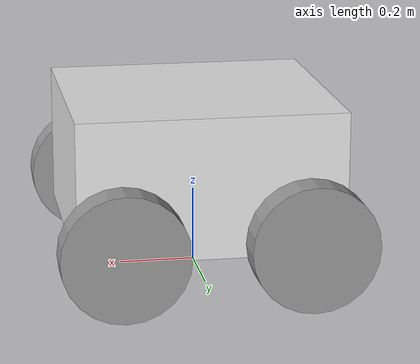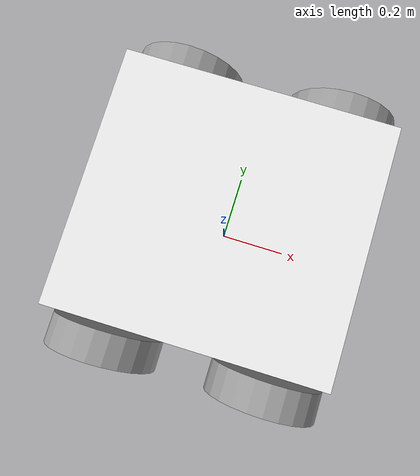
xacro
<?xml version="1.0"?>
<robot name="Nav2bot" xmlns:xacro="http://www.ros.org/wiki/xacro">

    <!-- INCLUDES - Bring all necessary components -->

    <!-- Include common properties of the differential robot. -->
    <xacro:include filename="$(find robot_description)/urdf/components/robot_structure/common_properties.xacro"/>

    <!-- Include the mobile base of the differential robot. -->
    <xacro:include filename="$(find robot_description)/urdf/components/robot_structure/mobile_base.xacro"/>

    <!-- sensor -->
    <xacro:include filename="$(find robot_description)/urdf/components/imu/mpu6050.urdf.xacro"/>

    <!-- Structure of the complete robot -->

     <!-- IMU (stable position, near the center of mass) -->
    <xacro:sensor_mpu6050 parent="base_link" name="imu">
        <origin xyz="0.0 0.0245 0.18" rpy="0.0 0.0 0.0"/>
    </xacro:sensor_mpu6050>

</robot>

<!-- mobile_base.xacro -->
<robot xmlns:xacro="http://www.ros.org/wiki/xacro">

    <!-- PARÁMETROS DIMENSIONALES DEL ROBOT -->

    <!-- Dimensiones del chasis principal [metros] -->
    <xacro:property name="base_length" value="0.7"/>      <!-- Largo del chasis (100cm) -->
    <xacro:property name="base_width" value="0.651"/>        <!-- Ancho del chasis (50cm) -->
    <xacro:property name="base_height" value="0.37"/>       <!-- Altura del chasis (30cm) -->

    <!-- Dimensiones de las ruedas [metros] -->
    <xacro:property name="wheel_radius" value="0.165"/>      <!-- Radio de cada rueda (10cm) -->
    <xacro:property name="wheel_length" value="0.09"/>     <!-- Grosor/ancho de rueda (5cm) -->

    <!-- Posicionamiento de ruedas [metros] -->
    <xacro:property name="wheel_y_offset" value="${base_width / 2.0 + wheel_length / 2 + 0.04}"/>  <!-- Distancia desde centro a rueda (4.85cm) -->
    <xacro:property name="wheel_x_offset" value="0.24"/> <!-- Desplazamiento longitudinal (20cm) -->
    <xacro:property name="wheel_z_offset" value="0.05"/>

    <!-- ESTRUCTURA PRINCIPAL DEL ROBOT -->

    <!-- Frame de referencia en el suelo -->
    <link name="base_footprint"/>

    <!-- Chasis principal del robot -->
    <link name="base_link">
        <visual>
            <geometry>
                <box size="${base_length} ${base_width} ${base_height}"/>
            </geometry>
            <!-- Posición: centro del chasis a la mitad de su altura -->
            <origin xyz="0 0 ${base_height / 2.0 }" rpy="0 0 0"/>
            <material name="white"/>
        </visual>
        <!-- Propiedades de inercia para simulación física -->
        <!-- m: masa [kg], l/w/h: dimensiones [m], xyz: centro de masa, rpy: orientación -->
        <xacro:box_inertia m="5.0" l="${2*base_length}" w="${2*base_width}" h="${2*base_height}"
         xyz="0 0 ${2*base_height / 2.0}" rpy="0 0 0" />
        <collision>
            <geometry>
                <box size="${base_length} ${base_width} ${base_height}"/>
            </geometry>
            <origin xyz="0 0 ${base_height / 2.0}" rpy="0 0 0"/>
        </collision>
    </link>

    <!-- MACRO PARA CREAR RUEDAS IDÉNTICAS -->

    <xacro:macro name="wheel_link" params="prefix">
        <link name="${prefix}_wheel_link">
            <visual>
                <geometry>
                    <!-- Rueda como cilindro: radius=radio, length=ancho -->
                    <cylinder radius="${wheel_radius}" length="${wheel_length}"/>
                </geometry>
                <!-- Rotación 90° en X para que el cilindro quede vertical -->
                <origin xyz="0 0 0" rpy="${pi/2.0} 0 0"/>
                <material name="grey"/>
            </visual>
            <!-- Inercia de cilindro para simulación realista -->
            <xacro:cylinder_inertia m="1.0" r="${2*wheel_radius}" h="${2*wheel_length}" xyz="0 0 0" rpy="${pi/2.0} 0 0"/>
            <collision>
                <geometry>
                    <cylinder radius="${wheel_radius}" length="${wheel_length}"/>
                </geometry>
                <origin xyz="0 0 0" rpy="${pi/2.0} 0 0"/>
            </collision>
        </link>
    </xacro:macro>

    <!-- CREACIÓN DE LAS 4 RUEDAS -->

    <!-- Ruedas delanteras -->
    <xacro:wheel_link prefix="front_left"/>
    <xacro:wheel_link prefix="front_right"/>

    <!-- Ruedas traseras -->
    <xacro:wheel_link prefix="rear_left"/>
    <xacro:wheel_link prefix="rear_right"/>

    <!-- JOINTS Y CONEXIONES -->

    <!-- Conexión base_footprint → base_link (fija) -->
    <joint name="base_joint" type="fixed">
        <parent link="base_footprint"/>
        <child link="base_link"/>
        <!-- Posición: base_link elevado al radio de la rueda -->
        <origin xyz="0 0 0.105" rpy="0 0 0"/>
    </joint>

    <!-- JOINTS DE RUEDAS DELANTERAS (tipo continuous = rotación continua) -->

    <!-- Rueda delantera derecha -->
    <joint name="base_front_right_wheel_joint" type="fixed">
        <parent link="base_link"/>
        <child link="front_right_wheel_link"/>
        <!-- Posición: esquina delantera derecha del chasis -->
        <origin xyz="${wheel_x_offset} ${-wheel_y_offset} ${wheel_z_offset}" rpy="0 0 0"/>
        <!-- Eje de rotación: Y (ruedas giran alrededor del eje longitudinal) -->
        <!--axis xyz="0 1 0"/-->
        <!-- Límites: velocity [rad/s], effort [Nm] -->
        <!--limit velocity="100" effort="100"/-->
    </joint>

    <!-- Rueda delantera izquierda -->
    <joint name="base_front_left_wheel_joint" type="fixed">
        <parent link="base_link"/>
        <child link="front_left_wheel_link"/>
        <!-- Posición: esquina delantera izquierda del chasis -->
        <origin xyz="${wheel_x_offset} ${wheel_y_offset} ${wheel_z_offset}" rpy="0 0 0"/>
    </joint>

    <!-- JOINTS DE RUEDAS TRASERAS -->

    <!-- Rueda trasera derecha -->
    <joint name="base_rear_right_wheel_joint" type="fixed">
        <parent link="base_link"/>
        <child link="rear_right_wheel_link"/>
        <!-- Posición: esquina trasera derecha del chasis -->
        <origin xyz="${-wheel_x_offset} ${-wheel_y_offset} ${wheel_z_offset}" rpy="0 0 0"/>
    </joint>

    <!-- Rueda trasera izquierda -->
    <joint name="base_rear_left_wheel_joint" type="fixed">
        <parent link="base_link"/>
        <child link="rear_left_wheel_link"/>
        <!-- Posición: esquina trasera izquierda del chasis -->
        <origin xyz="${-wheel_x_offset} ${wheel_y_offset} ${wheel_z_offset}" rpy="0 0 0"/>
    </joint>

</robot>

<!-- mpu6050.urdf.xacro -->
<robot name="sensor_mpu6050" xmlns:xacro="http://www.ros.org/wiki/xacro">

  <!-- Incluir materiales si existen, sino definir básicos -->
  <material name="green">
    <color rgba="0 1 0 1"/>
  </material>

  <xacro:macro name="sensor_mpu6050" params="name parent *origin">

    <joint name="${name}_joint" type="fixed">
      <xacro:insert_block name="origin"/>
      <parent link="${parent}"/>
      <child link="${name}_link"/>
    </joint>

    <link name="${name}_link">
      <inertial>
        <mass value="0.001"/>
        <origin rpy="0 0 0" xyz="0 0 0"/>
        <inertia ixx="0.000001" ixy="0" ixz="0" iyy="0.000001" iyz="0" izz="0.000001"/>
      </inertial>
      <visual>
        <origin rpy="0 0 0" xyz="0 0 0"/>
        <geometry>
          <!-- Tamaño realista de MPU6050 (16x12x2mm) -->
          <box size="0.016 0.012 0.002"/>
        </geometry>
        <material name="green"/>
      </visual>
      <collision>
        <origin rpy="0 0 0" xyz="0 0 0"/>
        <geometry>
          <box size="0.016 0.012 0.002"/>
        </geometry>
      </collision>
    </link>

  </xacro:macro>
</robot>
